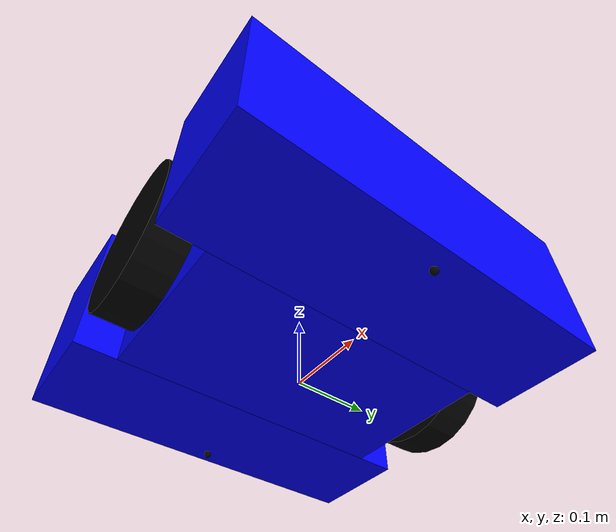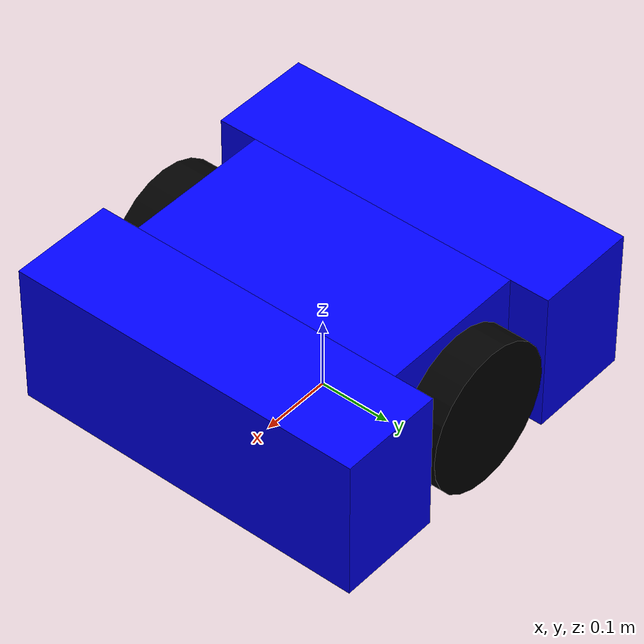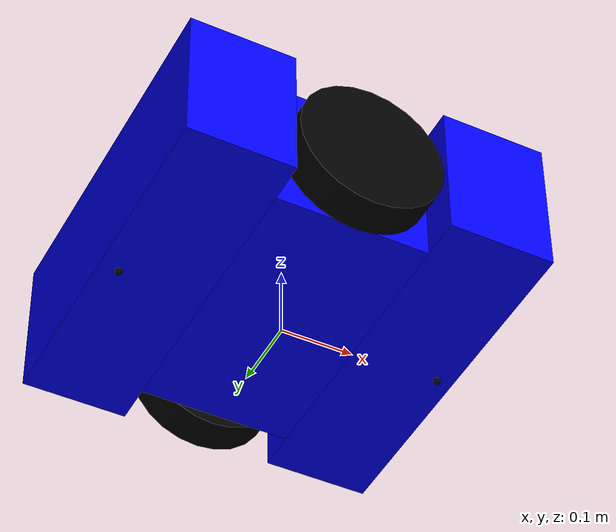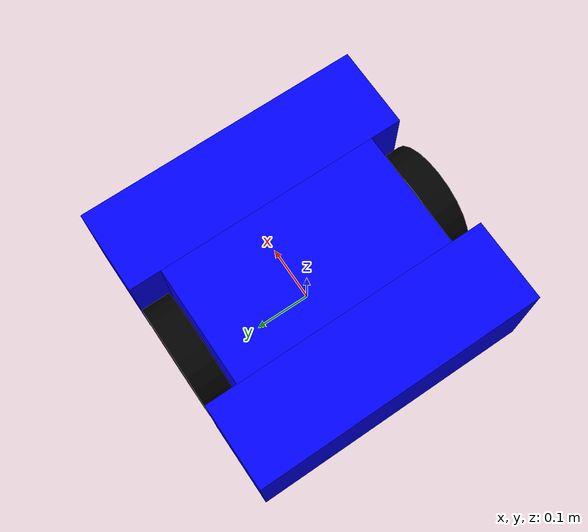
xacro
<?xml version="1.0"?>
<robot name="robot_base" xmlns:xacro="http://ros.org/wiki/xacro">
  <xacro:arg name="prefix" default=""/>

  <!-- include robot params -->
  <xacro:include filename="materials.xacro"/>
  <xacro:include filename="dimensions.xacro"/>
  <xacro:include filename="inertia_properties.xacro"/>

  <!-- Base chassis box -->
  <link name="$(arg prefix)_base_footprint">
  </link>

  <!-- ++++++++++++++++++++++++++++++++++ base link ++++++++++++++++++++++++++++++++++ -->
  <link name="$(arg prefix)_base_link">
    <xacro:box_inertia m="2.0" w="${2*(wheelgap)+wheeldiam}" h="${chassis_y-2*(wheelwidth+wheelgap)}" d="${chassis_z}"/>
    <visual>
      <geometry>
        <box size="${2*(wheelgap)+wheeldiam} ${chassis_y-2*(wheelwidth+wheelgap)} ${chassis_z}"/>
      </geometry>
      <material name="blue"/>
    </visual>
    <collision>
      <geometry>
        <box size="${2*(wheelgap)+wheeldiam} ${chassis_y-2*(wheelwidth+wheelgap)} ${chassis_z}"/>
      </geometry>
    </collision>
  </link>

  <joint name="$(arg prefix)_base_link_joint" type="fixed">
    <origin xyz="0 0 ${chassis_z/2+chassis_height}" rpy="0 0 0" />
    <parent link="$(arg prefix)_base_footprint"/>
    <child link="$(arg prefix)_base_link" />
  </joint>

  <gazebo reference="$(arg prefix)_base_link">
    <material>Gazebo/Red</material>
  </gazebo>

  <!-- +++++++++++++++++++++++++++++++++++ bumpers +++++++++++++++++++++++++++++++++++ -->
  <link name="$(arg prefix)_front_bumper">
    <xacro:box_inertia m="0.5" w="${(chassis_x-wheeldiam)/2-wheelgap}" h="${chassis_y}" d="${chassis_z}"/>
    <visual>
      <geometry>
        <box size="${(chassis_x-wheeldiam)/2-wheelgap} ${chassis_y} ${chassis_z}"/>
      </geometry>
      <material name="blue"/>
    </visual>
    <collision>
      <geometry>
        <box size="${(chassis_x-wheeldiam)/2-wheelgap} ${chassis_y} ${chassis_z}"/>
      </geometry>
    </collision>
  </link>

  <gazebo reference="$(arg prefix)_front_bumper">
    <material>Gazebo/Red</material>
  </gazebo>

  <link name="$(arg prefix)_rear_bumper">
    <xacro:box_inertia m="0.5" w="${(chassis_x-wheeldiam)/2-wheelgap}" h="${chassis_y}" d="${chassis_z}"/>
    <visual>
      <geometry>
        <box size="${(chassis_x-wheeldiam)/2-wheelgap} ${chassis_y} ${chassis_z}"/>
      </geometry>
      <material name="blue"/>
    </visual>
    <collision>
      <geometry>
        <box size="${(chassis_x-wheeldiam)/2-wheelgap} ${chassis_y} ${chassis_z}"/>
      </geometry>
    </collision>
  </link>

  <gazebo reference="$(arg prefix)_rear_bumper">
    <material>Gazebo/Red</material>
  </gazebo>

  <joint name="$(arg prefix)_front_bumper_joint" type="fixed">
    <origin xyz="${chassis_x/4+wheeldiam/4+wheelgap/2} 0 0" rpy="0 0 0" />
    <parent link="$(arg prefix)_base_link"/>
    <child link="$(arg prefix)_front_bumper" />
  </joint>

  <joint name="$(arg prefix)_rear_bumper_joint" type="fixed">
    <origin xyz="-${chassis_x/4+wheeldiam/4+wheelgap/2} 0 0" rpy="0 0 0" />
    <parent link="$(arg prefix)_base_link"/>
    <child link="$(arg prefix)_rear_bumper" />
  </joint>

  <!-- +++++++++++++++++++++++++++++++++++ Wheels ++++++++++++++++++++++++++++++++++++ -->
  <xacro:macro name="wheel" params="suffix reflect">
    <link name="$(arg prefix)_${suffix}_wheel">
      <visual>
        <origin xyz="0 0 0" rpy="${pi/2} 0 0" />
        <geometry>
          <cylinder radius="${wheeldiam/2}" length="${wheelwidth}"/>
        </geometry>
        <material name="black"/>
      </visual>
      <collision>
        <origin xyz="0 0 0" rpy="${pi/2} 0 0" />
        <geometry>
          <cylinder radius="${wheeldiam/2}" length="${wheelwidth}"/>
        </geometry>
      </collision>
      <xacro:cylinder_inertia m="0.2" r="${wheeldiam/2}" h="${wheelwidth}"/>
    </link>

    <gazebo reference="$(arg prefix)_${suffix}_wheel">
      <material>Gazebo/Black</material>
    </gazebo>

    <joint name="$(arg prefix)_${suffix}_wheel_joint" type="continuous">
      <axis xyz="0 1 0" rpy="0 0 0" />
      <parent link="$(arg prefix)_base_link"/>
      <child link="$(arg prefix)_${suffix}_wheel"/>
      <!-- (y) Places the wheel such that it is on the inside of the chassis -->
      <!-- (z) Places the wheel such that chassis is `chassis_height` above the ground -->
      <origin xyz="0 ${((chassis_y-wheelwidth)/2)*reflect} ${wheeldiam/2 - chassis_z/2 - chassis_height}" rpy="0 0 0"/>
    </joint>
  </xacro:macro>

  <!-- ++++++++++++++++++++++++++++++++ Caster wheels ++++++++++++++++++++++++++++++++ -->
  <xacro:macro name="caster" params="suffix reflect">
    <link name="$(arg prefix)_${suffix}_caster">
      <visual>
        <origin xyz="0 0 0" rpy="0 0 0" />
        <geometry>
          <sphere radius="${chassis_height/2}"/>
        </geometry>
        <material name="black"/>
      </visual>
      <collision>
        <origin xyz="0 0 0" rpy="0 0 0" />
        <geometry>
          <sphere radius="${chassis_height/2}"/>
        </geometry>
      </collision>
      <xacro:sphere_inertia m="0.1" r="${chassis_height/2}"/>
    </link>

    <gazebo reference="$(arg prefix)_${suffix}_caster">
      <mu1>0.005</mu1>
      <mu2>0.005</mu2>
      <material>Gazebo/Black</material>
    </gazebo>

    <joint name="$(arg prefix)_${suffix}_caster_joint" type="fixed">
      <axis xyz="0 1 0" rpy="0 0 0" />
      <parent link="$(arg prefix)_base_link"/>
      <child link="$(arg prefix)_${suffix}_caster"/>
      <origin xyz="${(chassis_x-caster_edge_offset)*reflect/2} 0 ${-chassis_z/2 - chassis_height/2}" rpy="0 0 0"/>
    </joint>
  </xacro:macro>

  <!-- +++++++++++++++++++++++++++++ Instanstiate Macros +++++++++++++++++++++++++++++ -->
  <xacro:caster suffix="front" reflect="1"/>
  <xacro:caster suffix="rear" reflect="-1"/>
  <xacro:wheel suffix="left" reflect="1"/>
  <xacro:wheel suffix="right" reflect="-1"/>

  <!-- ++++++++++++++++++++ Additional sensors, not used for now +++++++++++++++++++++ -->
  <!-- IMU -->

  <!-- LIDAR -->

  <!-- Depth Camera -->

  <!-- Includes Differential Drive controller, IMU -->
  <xacro:include filename="gazebo_plugins.xacro"/>
</robot>

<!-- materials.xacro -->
<!-- definition of the materials used -->
<robot xmlns:xacro="http://ros.org/wiki/xacro">
  <!-- 16 colour palette -->
  <material name="red"><color rgba="1.0 0.0 0.0 1.0"/></material>
  <material name="green"><color rgba="0.0 1.0 0.0 1.0"/></material>
  <material name="blue"><color rgba="0.0 0.0 1.0 1.0"/></material>
  <material name="yellow"><color rgba="1.0 1.0 0.0 1.0"/></material>
  <material name="purple"><color rgba="1.0 0.0 1.0 1.0"/></material>
  <material name="turquoise"><color rgba="0.0 1.0 1.0 1.0"/></material>
  <material name="orange"><color rgba="1.0 0.5 0.0 1.0"/></material>
  <material name="indigo"><color rgba="0.84 0.75 0.84 1.0"/></material>
  <material name="darkyellow"><color rgba="0.96 0.75 0.0 1.0"/></material>
  <material name="skyblue"><color rgba="0.53 0.81 0.91 1.0"/></material>
  <material name="zincyellow"><color rgba="0.98 0.79 0.19 1.0"/></material>
  <material name="redbright"><color rgba="1.0 0.2 0.2 1.0"/></material>
  <material name="bluelaser"><color rgba="0.2 0.2 1.0 1.0"/></material>
  <material name="grey"><color rgba="0.5 0.5 0.5 1.0"/></material>
  <material name="black"><color rgba="0.0 0.0 0.0 1.0"/></material>
  <material name="white"><color rgba="1.0 1.0 1.0 1.0"/></material>
</robot>

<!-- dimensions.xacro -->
<!-- dimensions of the robot -->
<robot xmlns:xacro="http://ros.org/wiki/xacro">
  <xacro:property name="wheeldiam" value="0.2" />
  <xacro:property name="wheelwidth" value="0.05" />
  <xacro:property name="wheelgap" value="0.005"/>

  <xacro:property name="chassis_x" value="0.5" />
  <xacro:property name="chassis_y" value="0.5" />
  <xacro:property name="chassis_z" value="0.2" />

  <!-- How high the chassis box is above the ground (defines wheel placement) -->
  <xacro:property name="chassis_height" value="0.01"/>

  <!-- How far the caster wheels are away from the robot edges -->
  <xacro:property name="caster_edge_offset" value="0.05"/>

</robot>

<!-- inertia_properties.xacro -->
<!-- Source: https://kiranpalla.com/blog/ros-using-differential-drive-gazebo-plugin/ -->

<robot xmlns:xacro="http://ros.org/wiki/xacro">
  <!-- Inertial values for Gazebo -->
  <xacro:macro name="default_inertial" params="mass">
    <inertial>
      <mass value="${mass}"/>
      <inertia ixx="1.0" ixy="0.0" ixz="0.0" iyy="1.0" iyz="0.0" izz="1.0"/>
    </inertial>
  </xacro:macro>

  <xacro:macro name="cylinder_inertia" params="m r h">
    <inertial>
      <mass value="${m}"/>
      <inertia ixx="${m*(3*r*r+h*h)/12}" ixy = "0" ixz = "0" iyy="${m*(3*r*r+h*h)/12}" iyz = "0" izz="${m*r*r/2}"/>
    </inertial>
  </xacro:macro>

  <xacro:macro name="box_inertia" params="m w h d">
    <inertial>
      <mass value="${m}"/>
      <inertia ixx="${m / 12.0 * (d*d + h*h)}" ixy="0.0" ixz="0.0" iyy="${m / 12.0 * (w*w + h*h)}" iyz="0.0" izz="${m / 12.0 * (w*w + d*d)}"/>
    </inertial>
  </xacro:macro>

  <xacro:macro name="sphere_inertia" params="m r">
    <inertial>
      <mass value="${m}"/>
      <inertia ixx="${2.0*m*(r*r)/5.0}" ixy="0.0" ixz="0.0" iyy="${2.0*m*(r*r)/5.0}" iyz="0.0" izz="${2.0*m*(r*r)/5.0}"/>
    </inertial>
  </xacro:macro>
</robot>
